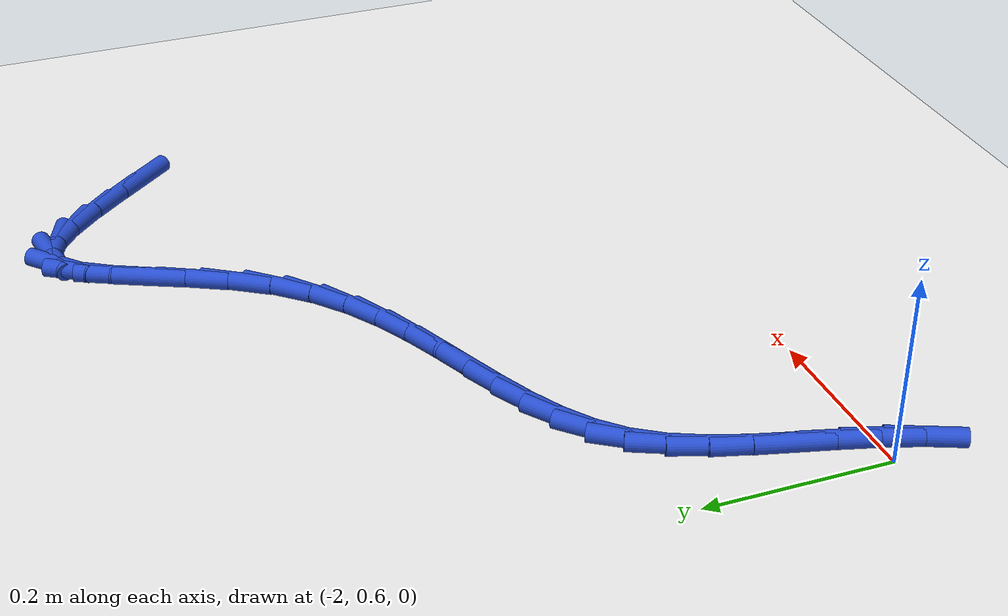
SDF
<sdf version="1.6">
 <world name="default">
  <model name="ground_plane">
   <static>1</static>
   <link name="link">
    <collision name="collision">
     <geometry><plane><normal>0 0 1</normal><size>100 100</size></plane></geometry>
     <surface><friction><ode><mu>100</mu><mu2>50</mu2></ode></friction></surface>
    </collision>
    <visual name="visual">
     <cast_shadows>0</cast_shadows>
     <geometry><plane><normal>0 0 1</normal><size>100 100</size></plane></geometry>
     <material>
      <script><uri>file://media/materials/scripts/gazebo.material</uri><name>Gazebo/WhiteGlow</name></script>
     </material>
    </visual>
   </link>
  </model>
  <model name="line">
   <link name="link_44">
    <pose>-1.2268033345110236 1.1381819284109935 0.01 0 1.57 -0.8684503086650068</pose>
    <collision name="collision">
     <geometry><cylinder><radius>0.01</radius><length>0.08</length></cylinder></geometry>
    </collision>
    <visual name="visual">
     <material>
      <script><name>Gazebo/Blue</name><uri>file://media/materials/scripts/gazebo.material</uri></script>
     </material>
     <geometry><cylinder><radius>0.01</radius><length>0.08</length></cylinder></geometry>
    </visual>
   </link>
   <link name="link_45">
    <pose>-1.2586719572760896 1.1758380425629074 0.01 0 1.57 -0.8495175865013076</pose>
    <collision name="collision">
     <geometry><cylinder><radius>0.01</radius><length>0.08</length></cylinder></geometry>
    </collision>
    <visual name="visual">
     <material>
      <script><name>Gazebo/Blue</name><uri>file://media/materials/scripts/gazebo.material</uri></script>
     </material>
     <geometry><cylinder><radius>0.01</radius><length>0.08</length></cylinder></geometry>
    </visual>
   </link>
   <link name="link_46">
    <pose>-1.2888046982514756 1.210105772887246 0.01 0 1.57 -0.7884056647588836</pose>
    <collision name="collision">
     <geometry><cylinder><radius>0.01</radius><length>0.08</length></cylinder></geometry>
    </collision>
    <visual name="visual">
     <material>
      <script><name>Gazebo/Blue</name><uri>file://media/materials/scripts/gazebo.material</uri></script>
     </material>
     <geometry><cylinder><radius>0.01</radius><length>0.08</length></cylinder></geometry>
    </visual>
   </link>
   <link name="link_47">
    <pose>-1.3170727452990234 1.2385443657457131 0.01 0 1.57 -0.6546790028297458</pose>
    <collision name="collision">
     <geometry><cylinder><radius>0.01</radius><length>0.08</length></cylinder></geometry>
    </collision>
    <visual name="visual">
     <material>
      <script><name>Gazebo/Blue</name><uri>file://media/materials/scripts/gazebo.material</uri></script>
     </material>
     <geometry><cylinder><radius>0.01</radius><length>0.08</length></cylinder></geometry>
    </visual>
   </link>
   <link name="link_48">
    <pose>-1.3433472862805753 1.2587130675000144 0.01 0 1.57 -0.3732457614078976</pose>
    <collision name="collision">
     <geometry><cylinder><radius>0.01</radius><length>0.08</length></cylinder></geometry>
    </collision>
    <visual name="visual">
     <material>
      <script><name>Gazebo/Blue</name><uri>file://media/materials/scripts/gazebo.material</uri></script>
     </material>
     <geometry><cylinder><radius>0.01</radius><length>0.08</length></cylinder></geometry>
    </visual>
   </link>
   <link name="link_49">
    <pose>-1.3674995090579736 1.268171124511854 0.01 0 1.57 0.1670605351684007</pose>
    <collision name="collision">
     <geometry><cylinder><radius>0.01</radius><length>0.08</length></cylinder></geometry>
    </collision>
    <visual name="visual">
     <material>
      <script><name>Gazebo/Blue</name><uri>file://media/materials/scripts/gazebo.material</uri></script>
     </material>
     <geometry><cylinder><radius>0.01</radius><length>0.08</length></cylinder></geometry>
    </visual>
   </link>
   <link name="link_50">
    <pose>-1.389400623779036 1.2644778900334017 0.01 0 1.57 0.7416526336656561</pose>
    <collision name="collision">
     <geometry><cylinder><radius>0.01</radius><length>0.08</length></cylinder></geometry>
    </collision>
    <visual name="visual">
     <material>
      <script><name>Gazebo/Blue</name><uri>file://media/materials/scripts/gazebo.material</uri></script>
     </material>
     <geometry><cylinder><radius>0.01</radius><length>0.08</length></cylinder></geometry>
    </visual>
   </link>
   <link name="link_51">
    <pose>-1.4091671485161363 1.2463692903857126 0.01 0 1.57 1.0112725498139092</pose>
    <collision name="collision">
     <geometry><cylinder><radius>0.01</radius><length>0.08</length></cylinder></geometry>
    </collision>
    <visual name="visual">
     <material>
      <script><name>Gazebo/Blue</name><uri>file://media/materials/scripts/gazebo.material</uri></script>
     </material>
     <geometry><cylinder><radius>0.01</radius><length>0.08</length></cylinder></geometry>
    </visual>
   </link>
   <link name="link_52">
    <pose>-1.4277679114213644 1.2166691960031093 0.01 0 1.57 1.1114456245779307</pose>
    <collision name="collision">
     <geometry><cylinder><radius>0.01</radius><length>0.08</length></cylinder></geometry>
    </collision>
    <visual name="visual">
     <material>
      <script><name>Gazebo/Blue</name><uri>file://media/materials/scripts/gazebo.material</uri></script>
     </material>
     <geometry><cylinder><radius>0.01</radius><length>0.08</length></cylinder></geometry>
    </visual>
   </link>
   <link name="link_53">
    <pose>-1.4463567268602624 1.1790887287091927 0.01 0 1.57 1.1293125882316797</pose>
    <collision name="collision">
     <geometry><cylinder><radius>0.01</radius><length>0.08</length></cylinder></geometry>
    </collision>
    <visual name="visual">
     <material>
      <script><name>Gazebo/Blue</name><uri>file://media/materials/scripts/gazebo.material</uri></script>
     </material>
     <geometry><cylinder><radius>0.01</radius><length>0.08</length></cylinder></geometry>
    </visual>
   </link>
   <link name="link_54">
    <pose>-1.4660874091983722 1.1373390103275618 0.01 0 1.57 1.0898182107142609</pose>
    <collision name="collision">
     <geometry><cylinder><radius>0.01</radius><length>0.08</length></cylinder></geometry>
    </collision>
    <visual name="visual">
     <material>
      <script><name>Gazebo/Blue</name><uri>file://media/materials/scripts/gazebo.material</uri></script>
     </material>
     <geometry><cylinder><radius>0.01</radius><length>0.08</length></cylinder></geometry>
    </visual>
   </link>
   <link name="link_55">
    <pose>-1.4881137728012364 1.0951311626818168 0.01 0 1.57 0.9916329180709903</pose>
    <collision name="collision">
     <geometry><cylinder><radius>0.01</radius><length>0.08</length></cylinder></geometry>
    </collision>
    <visual name="visual">
     <material>
      <script><name>Gazebo/Blue</name><uri>file://media/materials/scripts/gazebo.material</uri></script>
     </material>
     <geometry><cylinder><radius>0.01</radius><length>0.08</length></cylinder></geometry>
    </visual>
   </link>
   <link name="link_56">
    <pose>-1.5135894662443654 1.05617591910153 0.01 0 1.57 0.8385913575643416</pose>
    <collision name="collision">
     <geometry><cylinder><radius>0.01</radius><length>0.08</length></cylinder></geometry>
    </collision>
    <visual name="visual">
     <material>
      <script><name>Gazebo/Blue</name><uri>file://media/materials/scripts/gazebo.material</uri></script>
     </material>
     <geometry><cylinder><radius>0.01</radius><length>0.08</length></cylinder></geometry>
    </visual>
   </link>
   <link name="link_57">
    <pose>-1.5432427975626901 1.0231873169242487 0.01 0 1.57 0.6908493842331348</pose>
    <collision name="collision">
     <geometry><cylinder><radius>0.01</radius><length>0.08</length></cylinder></geometry>
    </collision>
    <visual name="visual">
     <material>
      <script><name>Gazebo/Blue</name><uri>file://media/materials/scripts/gazebo.material</uri></script>
     </material>
     <geometry><cylinder><radius>0.01</radius><length>0.08</length></cylinder></geometry>
    </visual>
   </link>
   <link name="link_58">
    <pose>-1.5764568360941484 0.9957271098707687 0.01 0 1.57 0.5697194353066316</pose>
    <collision name="collision">
     <geometry><cylinder><radius>0.01</radius><length>0.08</length></cylinder></geometry>
    </collision>
    <visual name="visual">
     <material>
      <script><name>Gazebo/Blue</name><uri>file://media/materials/scripts/gazebo.material</uri></script>
     </material>
     <geometry><cylinder><radius>0.01</radius><length>0.08</length></cylinder></geometry>
    </visual>
   </link>
   <link name="link_59">
    <pose>-1.6123493392254924 0.9727353489715665 0.01 0 1.57 0.4792086022467263</pose>
    <collision name="collision">
     <geometry><cylinder><radius>0.01</radius><length>0.08</length></cylinder></geometry>
    </collision>
    <visual name="visual">
     <material>
      <script><name>Gazebo/Blue</name><uri>file://media/materials/scripts/gazebo.material</uri></script>
     </material>
     <geometry><cylinder><radius>0.01</radius><length>0.08</length></cylinder></geometry>
    </visual>
   </link>
   <link name="link_60">
    <pose>-1.6500380643434776 0.9531520852571198 0.01 0 1.57 0.4199094469460347</pose>
    <collision name="collision">
     <geometry><cylinder><radius>0.01</radius><length>0.08</length></cylinder></geometry>
    </collision>
    <visual name="visual">
     <material>
      <script><name>Gazebo/Blue</name><uri>file://media/materials/scripts/gazebo.material</uri></script>
     </material>
     <geometry><cylinder><radius>0.01</radius><length>0.08</length></cylinder></geometry>
    </visual>
   </link>
   <link name="link_61">
    <pose>-1.6886407688348568 0.9359173697579058 0.01 0 1.57 0.3914436918524253</pose>
    <collision name="collision">
     <geometry><cylinder><radius>0.01</radius><length>0.08</length></cylinder></geometry>
    </collision>
    <visual name="visual">
     <material>
      <script><name>Gazebo/Blue</name><uri>file://media/materials/scripts/gazebo.material</uri></script>
     </material>
     <geometry><cylinder><radius>0.01</radius><length>0.08</length></cylinder></geometry>
    </visual>
   </link>
   <link name="link_62">
    <pose>-1.7272752100863842 0.9199712535044019 0.01 0 1.57 0.39420824676147287</pose>
    <collision name="collision">
     <geometry><cylinder><radius>0.01</radius><length>0.08</length></cylinder></geometry>
    </collision>
    <visual name="visual">
     <material>
      <script><name>Gazebo/Blue</name><uri>file://media/materials/scripts/gazebo.material</uri></script>
     </material>
     <geometry><cylinder><radius>0.01</radius><length>0.08</length></cylinder></geometry>
    </visual>
   </link>
   <link name="link_63">
    <pose>-1.7650591454848144 0.9042537875270851 0.01 0 1.57 0.43034216655012236</pose>
    <collision name="collision">
     <geometry><cylinder><radius>0.01</radius><length>0.08</length></cylinder></geometry>
    </collision>
    <visual name="visual">
     <material>
      <script><name>Gazebo/Blue</name><uri>file://media/materials/scripts/gazebo.material</uri></script>
     </material>
     <geometry><cylinder><radius>0.01</radius><length>0.08</length></cylinder></geometry>
    </visual>
   </link>
   <link name="link_64">
    <pose>-1.801110332416901 0.8877050228564329 0.01 0 1.57 0.503992973642419</pose>
    <collision name="collision">
     <geometry><cylinder><radius>0.01</radius><length>0.08</length></cylinder></geometry>
    </collision>
    <visual name="visual">
     <material>
      <script><name>Gazebo/Blue</name><uri>file://media/materials/scripts/gazebo.material</uri></script>
     </material>
     <geometry><cylinder><radius>0.01</radius><length>0.08</length></cylinder></geometry>
    </visual>
   </link>
   <link name="link_65">
    <pose>-1.834546528269398 0.8692650105229227 0.01 0 1.57 0.6203873943356049</pose>
    <collision name="collision">
     <geometry><cylinder><radius>0.01</radius><length>0.08</length></cylinder></geometry>
    </collision>
    <visual name="visual">
     <material>
      <script><name>Gazebo/Blue</name><uri>file://media/materials/scripts/gazebo.material</uri></script>
     </material>
     <geometry><cylinder><radius>0.01</radius><length>0.08</length></cylinder></geometry>
    </visual>
   </link>
   <link name="link_66">
    <pose>-1.86448549042906 0.8478738015570316 0.01 0 1.57 0.7823148605467306</pose>
    <collision name="collision">
     <geometry><cylinder><radius>0.01</radius><length>0.08</length></cylinder></geometry>
    </collision>
    <visual name="visual">
     <material>
      <script><name>Gazebo/Blue</name><uri>file://media/materials/scripts/gazebo.material</uri></script>
     </material>
     <geometry><cylinder><radius>0.01</radius><length>0.08</length></cylinder></geometry>
    </visual>
   </link>
   <link name="link_67">
    <pose>-1.8900449762826401 0.8224714469892371 0.01 0 1.57 0.9759069794002375</pose>
    <collision name="collision">
     <geometry><cylinder><radius>0.01</radius><length>0.08</length></cylinder></geometry>
    </collision>
    <visual name="visual">
     <material>
      <script><name>Gazebo/Blue</name><uri>file://media/materials/scripts/gazebo.material</uri></script>
     </material>
     <geometry><cylinder><radius>0.01</radius><length>0.08</length></cylinder></geometry>
    </visual>
   </link>
   <link name="link_68">
    <pose>-1.9105342181063238 0.792191491040128 0.01 0 1.57 1.1354763237626189</pose>
    <collision name="collision">
     <geometry><cylinder><radius>0.01</radius><length>0.08</length></cylinder></geometry>
    </collision>
    <visual name="visual">
     <material>
      <script><name>Gazebo/Blue</name><uri>file://media/materials/scripts/gazebo.material</uri></script>
     </material>
     <geometry><cylinder><radius>0.01</radius><length>0.08</length></cylinder></geometry>
    </visual>
   </link>
   <link name="link_69">
    <pose>-1.9266404734784466 0.7575600287371348 0.01 0 1.57 1.2396057637916114</pose>
    <collision name="collision">
     <geometry><cylinder><radius>0.01</radius><length>0.08</length></cylinder></geometry>
    </collision>
    <visual name="visual">
     <material>
      <script><name>Gazebo/Blue</name><uri>file://media/materials/scripts/gazebo.material</uri></script>
     </material>
     <geometry><cylinder><radius>0.01</radius><length>0.08</length></cylinder></geometry>
    </visual>
   </link>
   <link name="link_70">
    <pose>-1.939654412906323 0.7197129284984966 0.01 0 1.57 1.2969505598008424</pose>
    <collision name="collision">
     <geometry><cylinder><radius>0.01</radius><length>0.08</length></cylinder></geometry>
    </collision>
    <visual name="visual">
     <material>
      <script><name>Gazebo/Blue</name><uri>file://media/materials/scripts/gazebo.material</uri></script>
     </material>
     <geometry><cylinder><radius>0.01</radius><length>0.08</length></cylinder></geometry>
    </visual>
   </link>
   <link name="link_71">
    <pose>-1.9508692613529421 0.6797886401241595 0.01 0 1.57 1.3144901126773414</pose>
    <collision name="collision">
     <geometry><cylinder><radius>0.01</radius><length>0.08</length></cylinder></geometry>
    </collision>
    <visual name="visual">
     <material>
      <script><name>Gazebo/Blue</name><uri>file://media/materials/scripts/gazebo.material</uri></script>
     </material>
     <geometry><cylinder><radius>0.01</radius><length>0.08</length></cylinder></geometry>
    </visual>
   </link>
   <link name="link_72">
    <pose>-1.9615782437812923 0.6389256134140712 0.01 0 1.57 1.2952669515223125</pose>
    <collision name="collision">
     <geometry><cylinder><radius>0.01</radius><length>0.08</length></cylinder></geometry>
    </collision>
    <visual name="visual">
     <material>
      <script><name>Gazebo/Blue</name><uri>file://media/materials/scripts/gazebo.material</uri></script>
     </material>
     <geometry><cylinder><radius>0.01</radius><length>0.08</length></cylinder></geometry>
    </visual>
   </link>
   <link name="link_73">
    <pose>-1.9730745851543616 0.5982622981681783 0.01 0 1.57 1.2389703189672407</pose>
    <collision name="collision">
     <geometry><cylinder><radius>0.01</radius><length>0.08</length></cylinder></geometry>
    </collision>
    <visual name="visual">
     <material>
      <script><name>Gazebo/Blue</name><uri>file://media/materials/scripts/gazebo.material</uri></script>
     </material>
     <geometry><cylinder><radius>0.01</radius><length>0.08</length></cylinder></geometry>
    </visual>
   </link>
   <link name="link_74">
    <pose>-1.9866307097697866 0.558919735754001 0.01 0 1.57 1.1644974473168157</pose>
    <collision name="collision">
     <geometry><cylinder><radius>0.01</radius><length>0.08</length></cylinder></geometry>
    </collision>
    <visual name="visual">
     <material>
      <script><name>Gazebo/Blue</name><uri>file://media/materials/scripts/gazebo.material</uri></script>
     </material>
     <geometry><cylinder><radius>0.01</radius><length>0.08</length></cylinder></geometry>
    </visual>
   </link>
  </model>
 </world>
</sdf>
